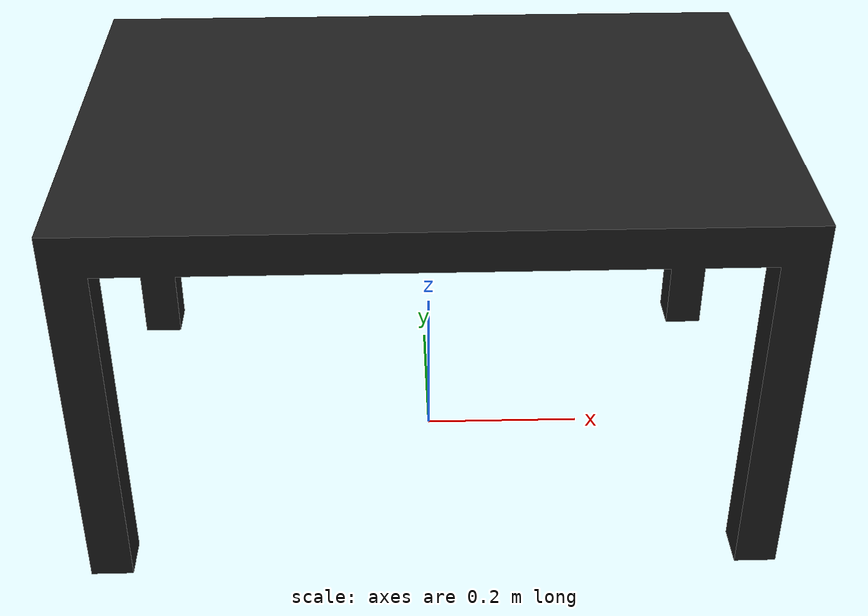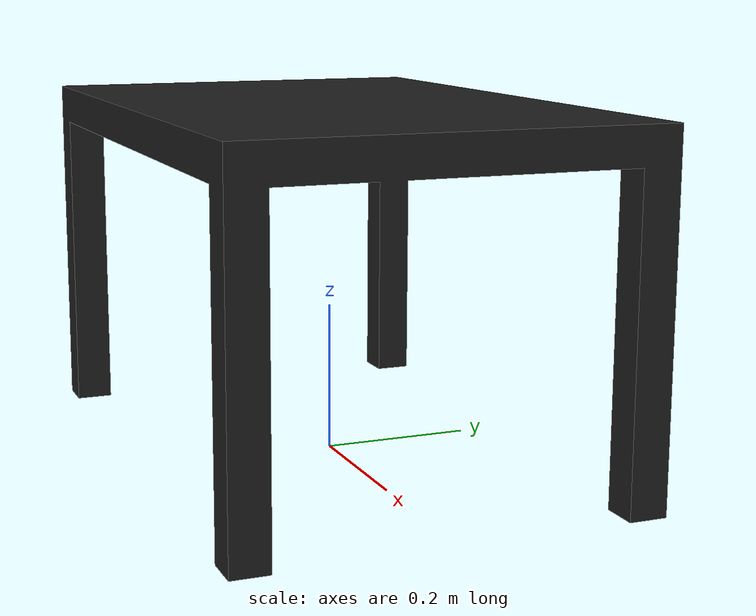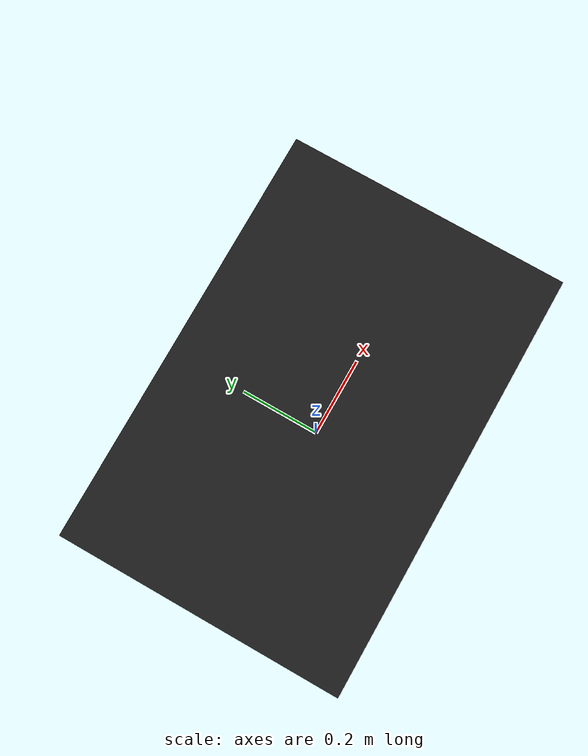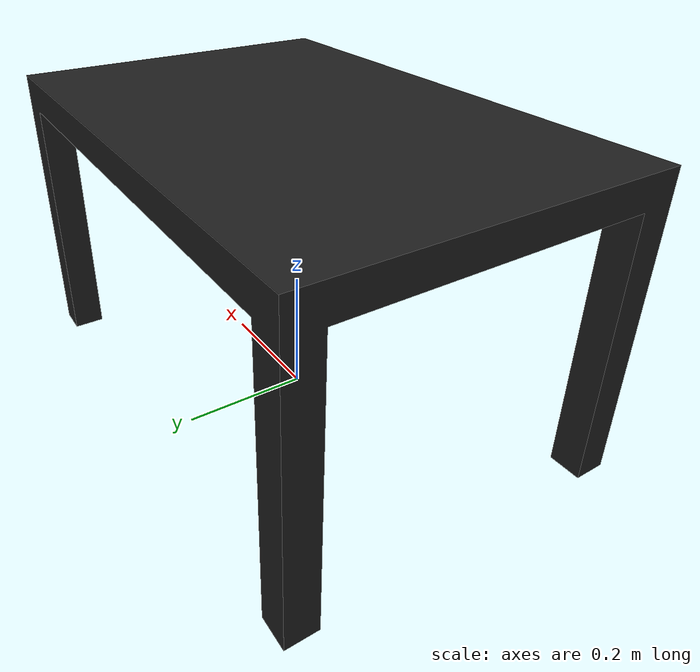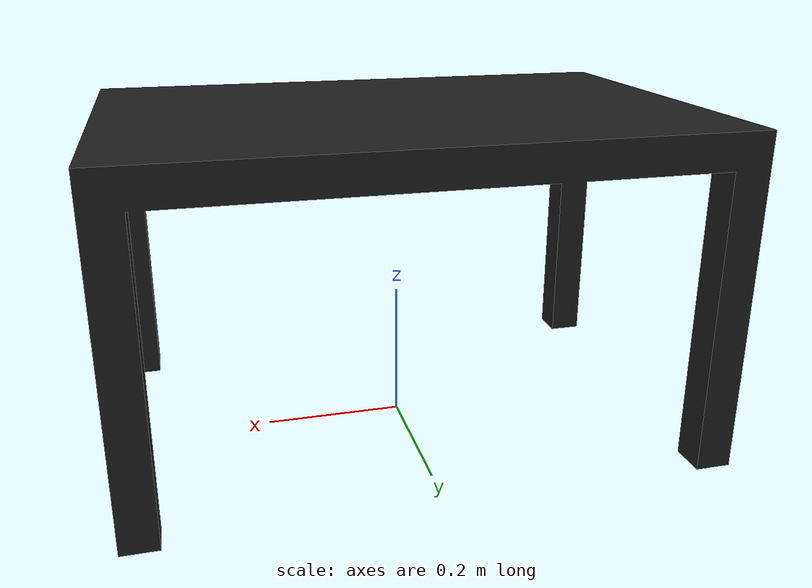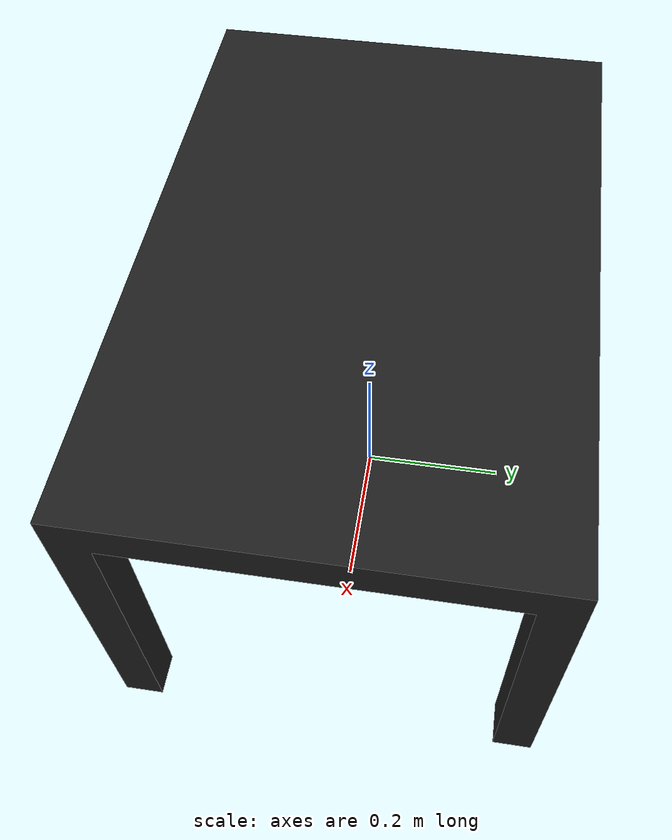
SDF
<?xml version="1.0" ?>
<sdf version='1.4'>
    <model name='lack_table_x15'>
      <static>1</static>
      <link name='link'>
        <visual name='visual'>
          <geometry>
            <mesh>
              <uri>model://lack_table_x15/model.stl</uri>
              <scale>0.001 0.001 0.001</scale>
            </mesh>
          </geometry>
          <material>
            <script>
              <uri>file://media/materials/scripts/gazebo.material</uri>
              <name>Gazebo/FlatBlack</name>
            </script>
          </material>
        </visual>
        <collision name='collision'>
          <geometry>
            <mesh>
              <uri>model://lack_table_x15/model.stl</uri>
              <scale>0.001 0.001 0.001</scale>
            </mesh>
          </geometry>
          <max_contacts>10</max_contacts>
          <surface>
            <bounce/>
            <friction>
              <ode/>
            </friction>
            <contact>
              <ode/>
            </contact>
          </surface>
        </collision>
        <velocity_decay>
          <linear>0</linear>
          <angular>0</angular>
        </velocity_decay>
        <inertial>
          <inertia>
            <ixx>0.136725</ixx>
            <ixy>0</ixy>
            <ixz>0</ixz>
            <iyy>0.09115</iyy>
            <iyz>0</iyz>
            <izz>0.17646</izz>
          </inertia>
          <pose frame=''>0 0 0.4 0 0 0</pose>
          <mass>4.5</mass>
        </inertial>
        <self_collide>0</self_collide>
        <kinematic>0</kinematic>
        <gravity>1</gravity>
      </link>
    </model>
</sdf>
